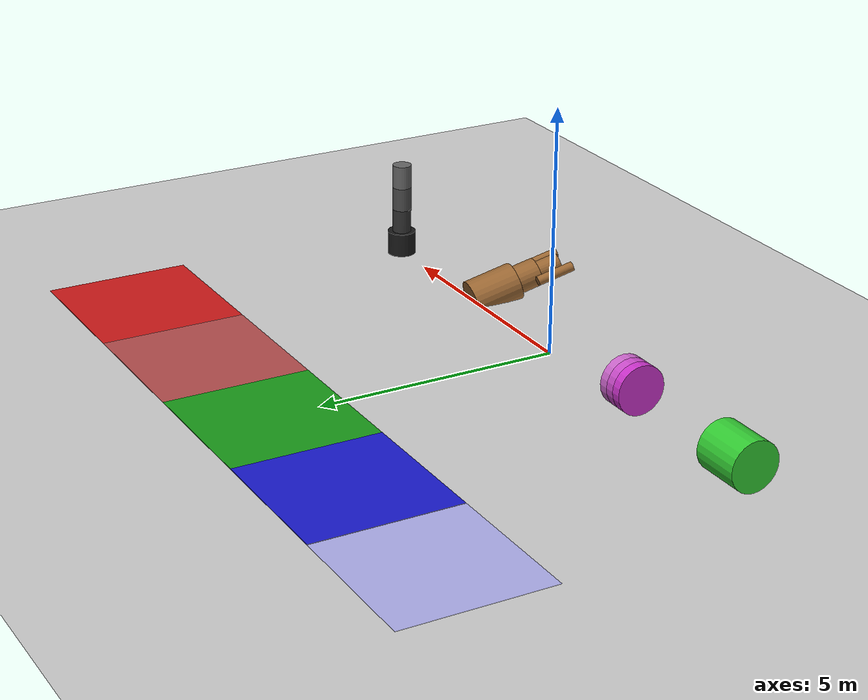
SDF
<?xml version="1.0" ?>
<sdf version="1.6">
  <world name="spring_world">

    <plugin name='ignition::gazebo::systems::Physics' filename='libignition-gazebo-physics-system.so'/>
    <plugin name='ignition::gazebo::systems::UserCommands' filename='libignition-gazebo-user-commands-system.so'/>
    <plugin name='ignition::gazebo::systems::SceneBroadcaster' filename='libignition-gazebo-scene-broadcaster-system.so'/>
    <plugin name='ignition::gazebo::systems::Sensors' filename='libignition-gazebo-sensors-system.so'>
      <render_engine>ogre2</render_engine>
    </plugin>
    <plugin name="ignition::gazebo::systems::Imu" filename="libignition-gazebo-imu-system.so"/>
    <plugin name="ignition::gazebo::systems::NavSat" filename="libignition-gazebo-navsat-system.so"/>

    <model name='ground_plane'>
      <static>true</static>
      <link name='link'>
        <collision name='collision'>
          <geometry>
            <plane>
              <normal>0.0 0.0 1</normal>
              <size>100 100</size>
            </plane>
          </geometry>
        </collision>
        <visual name='visual'>
          <geometry>
            <plane>
              <normal>0.0 0.0 1</normal>
              <size>100 100</size>
            </plane>
          </geometry>
          <material>
            <ambient>0.8 0.8 0.8 1</ambient>
            <diffuse>0.8 0.8 0.8 1</diffuse>
          </material>
        </visual>
      </link>
      <pose>0 0 0 0 0 0</pose>
    </model>

    <!-- ADJACENT FRICTION PATCHES (in increasing friction order) -->

    <!-- Ultra Slippery Ice Patch (mu=0.01) -->
    <model name="patch_ice">
      <static>true</static>
      <pose>-6 6 0.01 0 0 0</pose>
      <link name="patch_link">
        <collision name="collision">
          <geometry>
            <box><size>3 3 0.01</size></box>
          </geometry>
          <surface>
            <friction><ode><mu>0.01</mu><mu2>0.01</mu2></ode></friction>
          </surface>
        </collision>
        <visual name="visual">
          <geometry><box><size>3 3 0.01</size></box></geometry>
          <material><ambient>0.7 0.7 1.0 0.8</ambient><diffuse>0.7 0.7 1.0 0.8</diffuse></material>
        </visual>
      </link>
    </model>

    <!-- Low Friction Patch (mu=0.2) -->
    <model name="patch_low_friction">
      <static>true</static>
      <pose>-3 6 0.01 0 0 0</pose>
      <link name="patch_link">
        <collision name="collision">
          <geometry>
            <box><size>3 3 0.01</size></box>
          </geometry>
          <surface>
            <friction><ode><mu>0.2</mu><mu2>0.2</mu2></ode></friction>
          </surface>
        </collision>
        <visual name="visual">
          <geometry><box><size>3 3 0.01</size></box></geometry>
          <material><ambient>0.1 0.1 0.8 1</ambient><diffuse>0.1 0.1 0.8 1</diffuse></material>
        </visual>
      </link>
    </model>

    <!-- Medium Friction Patch (mu=3.0) -->
    <model name="patch_medium_friction">
      <static>true</static>
      <pose>0 6 0.01 0 0 0</pose>
      <link name="patch_link">
        <collision name="collision">
          <geometry>
            <box><size>3 3 0.01</size></box>
          </geometry>
          <surface>
            <friction><ode><mu>3.0</mu><mu2>3.0</mu2></ode></friction>
          </surface>
        </collision>
        <visual name="visual">
          <geometry><box><size>3 3 0.01</size></box></geometry>
          <material><ambient>0.1 0.6 0.1 1</ambient><diffuse>0.1 0.6 0.1 1</diffuse></material>
        </visual>
      </link>
    </model>

    <!-- High Friction Patch (mu=6.0) -->
    <model name="resistance_patch">
      <static>true</static>
      <pose>3 6 0.01 0 0 0</pose>
      <link name="patch_link">
        <collision name="collision">
          <geometry>
            <box><size>3 3 0.01</size></box>
          </geometry>
          <surface>
            <friction><ode><mu>6.0</mu><mu2>6.0</mu2></ode></friction>
          </surface>
        </collision>
        <visual name="visual">
          <geometry><box><size>3 3 0.01</size></box></geometry>
          <material><ambient>0.7 0.3 0.3 1</ambient><diffuse>0.7 0.3 0.3 1</diffuse></material>
        </visual>
      </link>
    </model>

    <!-- Very High Friction Patch (mu=10.0) -->
    <model name="patch_high_friction">
      <static>true</static>
      <pose>6 6 0.01 0 0 0</pose>
      <link name="patch_link">
        <collision name="collision">
          <geometry>
            <box><size>3 3 0.01</size></box>
          </geometry>
          <surface>
            <friction><ode><mu>10.0</mu><mu2>10.0</mu2></ode></friction>
          </surface>
        </collision>
        <visual name="visual">
          <geometry><box><size>3 3 0.01</size></box></geometry>
          <material><ambient>0.8 0.1 0.1 1</ambient><diffuse>0.8 0.1 0.1 1</diffuse></material>
        </visual>
      </link>
    </model>

    <!-- COLLECTION OF PLIABLE OBSTACLES WITH VARYING PROPERTIES -->

    <!-- Original Springy Bush Model -->
    <model name="bush_spring">
      <static>false</static>
      <pose>-6 0 0.5 1.57 1.57 1.57</pose>
      <link name="bush_link">
        <collision name="collision">
          <geometry>
            <cylinder>
              <radius>0.5</radius>
              <length>1.0</length>
            </cylinder>
          </geometry>
          <surface>
            <contact>
              <ode>
                <kp>100.0</kp>         <!-- Spring stiffness -->
                <kd>5.0</kd>           <!-- Damping -->
                <max_vel>0.5</max_vel> <!-- Optional: limit collision velocity -->
                <min_depth>0.001</min_depth> <!-- Optional: minimum penetration before contact triggers -->
              </ode>
            </contact>
            <friction>
              <ode>
                <mu>0.2</mu>
                <mu2>0.2</mu2>
              </ode>
            </friction>
          </surface>
        </collision>
        <visual name="visual">
          <geometry>
            <cylinder>
              <radius>0.5</radius>
              <length>1.0</length>
            </cylinder>
          </geometry>
          <material>
            <ambient>0.2 0.8 0.2 1</ambient>
            <diffuse>0.2 0.8 0.2 1</diffuse>
          </material>
        </visual>
        <sensor name="contact_sensor" type="contact">
          <always_on>1</always_on>
          <update_rate>30</update_rate>
          <contact>
            <collision>collision</collision>
          </contact>
        </sensor>
      </link>
      <joint name="spring_joint" type="prismatic">
        <parent>world</parent>
        <child>bush_link</child>
        <axis>
          <xyz>0 0 1</xyz>
          <limit>
            <lower>-0.1</lower>
            <upper>0.1</upper>
          </limit>
          <dynamics>
            <spring_stiffness>10.0</spring_stiffness>
            <damping>5.0</damping>
          </dynamics>
        </axis>
      </joint>
    </model>

    Soft Pliable Cylinder with Multiple Joints
    <model name="soft_cylinder">
      <static>false</static>
      <pose>-3 0 0.5 1.57 0 1.57</pose>
      <link name="base_link">
        <collision name="collision">
          <geometry>
            <cylinder>
              <radius>0.5</radius>
              <length>0.2</length>
            </cylinder>
          </geometry>
          <surface>
            <contact>
              <ode>
                <kp>50.0</kp>         <!-- Lower stiffness -->
                <kd>2.0</kd>          <!-- Lower damping -->
              </ode>
            </contact>
            <friction>
              <ode>
                <mu>0.2</mu>
                <mu2>0.2</mu2>
              </ode>
            </friction>
          </surface>
        </collision>
        <visual name="visual">
          <geometry>
            <cylinder>
              <radius>0.5</radius>
              <length>0.2</length>
            </cylinder>
          </geometry>
          <material>
            <ambient>0.8 0.2 0.8 1</ambient>
            <diffuse>0.8 0.2 0.8 1</diffuse>
          </material>
        </visual>
        <inertial>
          <mass>0.5</mass>
        </inertial>
      </link>

      <!-- Middle section -->
      <link name="middle_link">
        <pose>0 0 0.2 0 0 0</pose>
        <collision name="collision">
          <geometry>
            <cylinder>
              <radius>0.5</radius>
              <length>0.2</length>
            </cylinder>
          </geometry>
        </collision>
        <visual name="visual">
          <geometry>
            <cylinder>
              <radius>0.5</radius>
              <length>0.2</length>
            </cylinder>
          </geometry>
          <material>
            <ambient>0.8 0.3 0.8 1</ambient>
            <diffuse>0.8 0.3 0.8 1</diffuse>
          </material>
        </visual>
        <inertial>
          <mass>0.5</mass>
        </inertial>
      </link>

      <!-- Top section -->
      <link name="top_link">
        <pose>0 0 0.4 0 0 0</pose>
        <collision name="collision">
          <geometry>
            <cylinder>
              <radius>0.5</radius>
              <length>0.2</length>
            </cylinder>
          </geometry>
        </collision>
        <visual name="visual">
          <geometry>
            <cylinder>
              <radius>0.5</radius>
              <length>0.2</length>
            </cylinder>
          </geometry>
          <material>
            <ambient>0.8 0.4 0.8 1</ambient>
            <diffuse>0.8 0.4 0.8 1</diffuse>
          </material>
        </visual>
        <inertial>
          <mass>0.5</mass>
        </inertial>
      </link>

      <!-- Base to ground joint -->
      <joint name="base_joint" type="ball">
        <parent>world</parent>
        <child>base_link</child>
        <axis>
          <xyz>1 0 0</xyz>
          <dynamics>
            <damping>1.0</damping>
            <spring_stiffness>5.0</spring_stiffness>
          </dynamics>
        </axis>
      </joint>

      <!-- Middle joint -->
      <joint name="middle_joint" type="universal">
        <parent>base_link</parent>
        <child>middle_link</child>
        <pose>0 0 0.1 0 0 0</pose>
        <axis>
          <xyz>1 0 0</xyz>
          <dynamics>
            <damping>0.5</damping>
            <spring_stiffness>2.0</spring_stiffness>
          </dynamics>
          <limit>
            <lower>-0.5</lower>
            <upper>0.5</upper>
          </limit>
        </axis>
        <axis2>
          <xyz>0 1 0</xyz>
          <dynamics>
            <damping>0.5</damping>
            <spring_stiffness>2.0</spring_stiffness>
          </dynamics>
          <limit>
            <lower>-0.5</lower>
            <upper>0.5</upper>
          </limit>
        </axis2>
      </joint>

      <!-- Top joint -->
      <joint name="top_joint" type="universal">
        <parent>middle_link</parent>
        <child>top_link</child>
        <pose>0 0 0.1 0 0 0</pose>
        <axis>
          <xyz>1 0 0</xyz>
          <dynamics>
            <damping>0.2</damping>
            <spring_stiffness>1.0</spring_stiffness>
          </dynamics>
          <limit>
            <lower>-0.7</lower>
            <upper>0.7</upper>
          </limit>
        </axis>
        <axis2>
          <xyz>0 1 0</xyz>
          <dynamics>
            <damping>0.2</damping>
            <spring_stiffness>1.0</spring_stiffness>
          </dynamics>
          <limit>
            <lower>-0.7</lower>
            <upper>0.7</upper>
          </limit>
        </axis2>
      </joint>
    </model>

    <!-- Bendy Tree with Soft and Hard Sections -->
    <model name="bendy_tree">
      <static>false</static>
      <pose>3 0 0 5 0 3</pose>

      <!-- Trunk base - fixed to ground -->
      <link name="trunk_base">
        <pose>0 0 0.5 0 0 0</pose>
        <collision name="collision">
          <geometry>
            <cylinder>
              <radius>0.4</radius>
              <length>1.0</length>
            </cylinder>
          </geometry>
          <surface>
            <friction>
              <ode>
                <mu>1.0</mu>
                <mu2>1.0</mu2>
              </ode>
            </friction>
          </surface>
        </collision>
        <visual name="visual">
          <geometry>
            <cylinder>
              <radius>0.4</radius>
              <length>1.0</length>
            </cylinder>
          </geometry>
          <material>
            <ambient>0.6 0.4 0.2 1</ambient>
            <diffuse>0.6 0.4 0.2 1</diffuse>
          </material>
        </visual>
        <inertial>
          <mass>5.0</mass>
        </inertial>
      </link>

      <!-- Middle trunk section - more flexible -->
      <link name="trunk_middle">
        <pose>0 0 1.25 0 0 0</pose>
        <collision name="collision">
          <geometry>
            <cylinder>
              <radius>0.3</radius>
              <length>0.5</length>
            </cylinder>
          </geometry>
        </collision>
        <visual name="visual">
          <geometry>
            <cylinder>
              <radius>0.3</radius>
              <length>0.5</length>
            </cylinder>
          </geometry>
          <material>
            <ambient>0.6 0.4 0.2 1</ambient>
            <diffuse>0.6 0.4 0.2 1</diffuse>
          </material>
        </visual>
        <inertial>
          <mass>3.0</mass>
        </inertial>
      </link>

      <!-- Upper trunk section - most flexible -->
      <link name="trunk_upper">
        <pose>0 0 1.75 0 0 0</pose>
        <collision name="collision">
          <geometry>
            <cylinder>
              <radius>0.2</radius>
              <length>0.5</length>
            </cylinder>
          </geometry>
        </collision>
        <visual name="visual">
          <geometry>
            <cylinder>
              <radius>0.2</radius>
              <length>0.5</length>
            </cylinder>
          </geometry>
          <material>
            <ambient>0.6 0.4 0.2 1</ambient>
            <diffuse>0.6 0.4 0.2 1</diffuse>
          </material>
        </visual>
        <inertial>
          <mass>1.5</mass>
        </inertial>
      </link>

      <!-- Left branch -->
      <link name="branch_left">
        <pose>0.4 0 1.75 0 0 0</pose>
        <collision name="collision">
          <geometry>
            <cylinder>
              <radius>0.1</radius>
              <length>0.8</length>
            </cylinder>
          </geometry>
        </collision>
        <visual name="visual">
          <geometry>
            <cylinder>
              <radius>0.1</radius>
              <length>0.8</length>
            </cylinder>
          </geometry>
          <material>
            <ambient>0.6 0.4 0.2 1</ambient>
            <diffuse>0.6 0.4 0.2 1</diffuse>
          </material>
        </visual>
        <inertial>
          <mass>0.8</mass>
        </inertial>
      </link>

      <!-- Right branch -->
      <link name="branch_right">
        <pose>-0.4 0 1.75 0 0 0</pose>
        <collision name="collision">
          <geometry>
            <cylinder>
              <radius>0.1</radius>
              <length>0.8</length>
            </cylinder>
          </geometry>
        </collision>
        <visual name="visual">
          <geometry>
            <cylinder>
              <radius>0.1</radius>
              <length>0.8</length>
            </cylinder>
          </geometry>
          <material>
            <ambient>0.6 0.4 0.2 1</ambient>
            <diffuse>0.6 0.4 0.2 1</diffuse>
          </material>
        </visual>
        <inertial>
          <mass>0.8</mass>
        </inertial>
      </link>

      <!-- Fixed base to world -->
      <joint name="world_joint" type="fixed">
        <parent>world</parent>
        <child>trunk_base</child>
      </joint>

      <!-- Base to middle trunk joint -->
      <joint name="trunk_middle_joint" type="revolute">
        <parent>trunk_base</parent>
        <child>trunk_middle</child>
        <pose>0 0 0.25 0 0 0</pose>
        <axis>
          <xyz>1 0 0</xyz>
          <limit>
            <lower>-0.3</lower>
            <upper>0.3</upper>
          </limit>
          <dynamics>
            <spring_stiffness>200</spring_stiffness>
            <damping>20.0</damping>
          </dynamics>
        </axis>
      </joint>

      <!-- Middle to upper trunk joint -->
      <joint name="trunk_upper_joint" type="universal">
        <parent>trunk_middle</parent>
        <child>trunk_upper</child>
        <pose>0 0 0.25 0 0 0</pose>
        <axis>
          <xyz>1 0 0</xyz>
          <limit>
            <lower>-0.5</lower>
            <upper>0.5</upper>
          </limit>
          <dynamics>
            <spring_stiffness>100</spring_stiffness>
            <damping>10.0</damping>
          </dynamics>
        </axis>
        <axis2>
          <xyz>0 1 0</xyz>
          <limit>
            <lower>-0.5</lower>
            <upper>0.5</upper>
          </limit>
          <dynamics>
            <spring_stiffness>100</spring_stiffness>
            <damping>10.0</damping>
          </dynamics>
        </axis2>
      </joint>

      <!-- Left branch joint -->
      <joint name="branch_left_joint" type="universal">
        <parent>trunk_upper</parent>
        <child>branch_left</child>
        <pose>0 0 0 0 1.5708 0</pose>
        <axis>
          <xyz>0 1 0</xyz>
          <limit>
            <lower>-0.8</lower>
            <upper>0.8</upper>
          </limit>
          <dynamics>
            <spring_stiffness>50</spring_stiffness>
            <damping>5.0</damping>
          </dynamics>
        </axis>
        <axis2>
          <xyz>0 0 1</xyz>
          <limit>
            <lower>-0.8</lower>
            <upper>0.8</upper>
          </limit>
          <dynamics>
            <spring_stiffness>50</spring_stiffness>
            <damping>5.0</damping>
          </dynamics>
        </axis2>
      </joint>

      <!-- Right branch joint -->
      <joint name="branch_right_joint" type="universal">
        <parent>trunk_upper</parent>
        <child>branch_right</child>
        <pose>0 0 0 0 -1.5708 0</pose>
        <axis>
          <xyz>0 1 0</xyz>
          <limit>
            <lower>-0.8</lower>
            <upper>0.8</upper>
          </limit>
          <dynamics>
            <spring_stiffness>50</spring_stiffness>
            <damping>5.0</damping>
          </dynamics>
        </axis>
        <axis2>
          <xyz>0 0 1</xyz>
          <limit>
            <lower>-0.8</lower>
            <upper>0.8</upper>
          </limit>
          <dynamics>
            <spring_stiffness>50</spring_stiffness>
            <damping>5.0</damping>
          </dynamics>
        </axis2>
      </joint>
    </model>

    <!-- Super Flexible Obstacle - Rubber-like -->
    <model name="rubber_post">
      <static>false</static>
      <pose>6 0 0 0 0 0</pose>

      <!-- Base anchor -->
      <link name="base">
        <pose>0 0 0.25 0 0 0</pose>
        <collision name="collision">
          <geometry>
            <cylinder>
              <radius>0.3</radius>
              <length>0.5</length>
            </cylinder>
          </geometry>
          <surface>
            <friction>
              <ode>
                <mu>1.0</mu>
                <mu2>1.0</mu2>
              </ode>
            </friction>
          </surface>
        </collision>
        <visual name="visual">
          <geometry>
            <cylinder>
              <radius>0.3</radius>
              <length>0.5</length>
            </cylinder>
          </geometry>
          <material>
            <ambient>0.1 0.1 0.1 1</ambient>
            <diffuse>0.1 0.1 0.1 1</diffuse>
          </material>
        </visual>
        <inertial>
          <mass>3.0</mass>
        </inertial>
      </link>

      <!-- Flexible segments -->
      <link name="segment1">
        <pose>0 0 0.75 0 0 0</pose>
        <collision name="collision">
          <geometry>
            <cylinder>
              <radius>0.2</radius>
              <length>0.5</length>
            </cylinder>
          </geometry>
        </collision>
        <visual name="visual">
          <geometry>
            <cylinder>
              <radius>0.2</radius>
              <length>0.5</length>
            </cylinder>
          </geometry>
          <material>
            <ambient>0.2 0.2 0.2 1</ambient>
            <diffuse>0.2 0.2 0.2 1</diffuse>
          </material>
        </visual>
        <inertial>
          <mass>0.5</mass>
        </inertial>
      </link>

      <link name="segment2">
        <pose>0 0 1.25 0 0 0</pose>
        <collision name="collision">
          <geometry>
            <cylinder>
              <radius>0.2</radius>
              <length>0.5</length>
            </cylinder>
          </geometry>
        </collision>
        <visual name="visual">
          <geometry>
            <cylinder>
              <radius>0.2</radius>
              <length>0.5</length>
            </cylinder>
          </geometry>
          <material>
            <ambient>0.3 0.3 0.3 1</ambient>
            <diffuse>0.3 0.3 0.3 1</diffuse>
          </material>
        </visual>
        <inertial>
          <mass>0.5</mass>
        </inertial>
      </link>

      <link name="segment3">
        <pose>0 0 1.75 0 0 0</pose>
        <collision name="collision">
          <geometry>
            <cylinder>
              <radius>0.2</radius>
              <length>0.5</length>
            </cylinder>
          </geometry>
        </collision>
        <visual name="visual">
          <geometry>
            <cylinder>
              <radius>0.2</radius>
              <length>0.5</length>
            </cylinder>
          </geometry>
          <material>
            <ambient>0.4 0.4 0.4 1</ambient>
            <diffuse>0.4 0.4 0.4 1</diffuse>
          </material>
        </visual>
        <inertial>
          <mass>0.5</mass>
        </inertial>
      </link>

      <!-- Fixed joint to world -->
      <joint name="world_joint" type="fixed">
        <parent>world</parent>
        <child>base</child>
      </joint>

      <!-- Soft ball joints between segments -->
      <joint name="joint1" type="ball">
        <parent>base</parent>
        <child>segment1</child>
        <pose>0 0 0.25 0 0 0</pose>
        <axis>
          <xyz>1 0 0</xyz>
          <dynamics>
            <damping>1.0</damping>
            <spring_stiffness>10.0</spring_stiffness>
          </dynamics>
        </axis>
      </joint>

      <joint name="joint2" type="ball">
        <parent>segment1</parent>
        <child>segment2</child>
        <pose>0 0 0.25 0 0 0</pose>
        <axis>
          <xyz>1 0 0</xyz>
          <dynamics>
            <damping>0.8</damping>
            <spring_stiffness>8.0</spring_stiffness>
          </dynamics>
        </axis>
      </joint>

      <joint name="joint3" type="ball">
        <parent>segment2</parent>
        <child>segment3</child>
        <pose>0 0 0.25 0 0 0</pose>
        <axis>
          <xyz>1 0 0</xyz>
          <dynamics>
            <damping>0.5</damping>
            <spring_stiffness>5.0</spring_stiffness>
          </dynamics>
        </axis>
      </joint>
    </model>
  </world>
</sdf>
